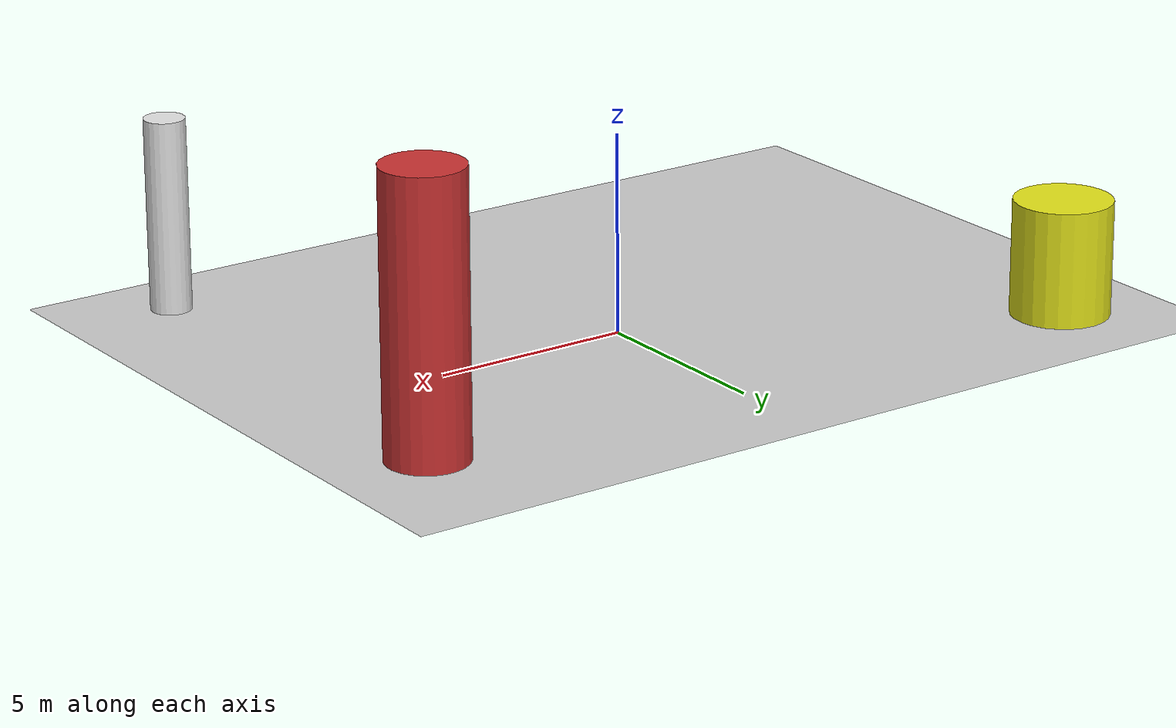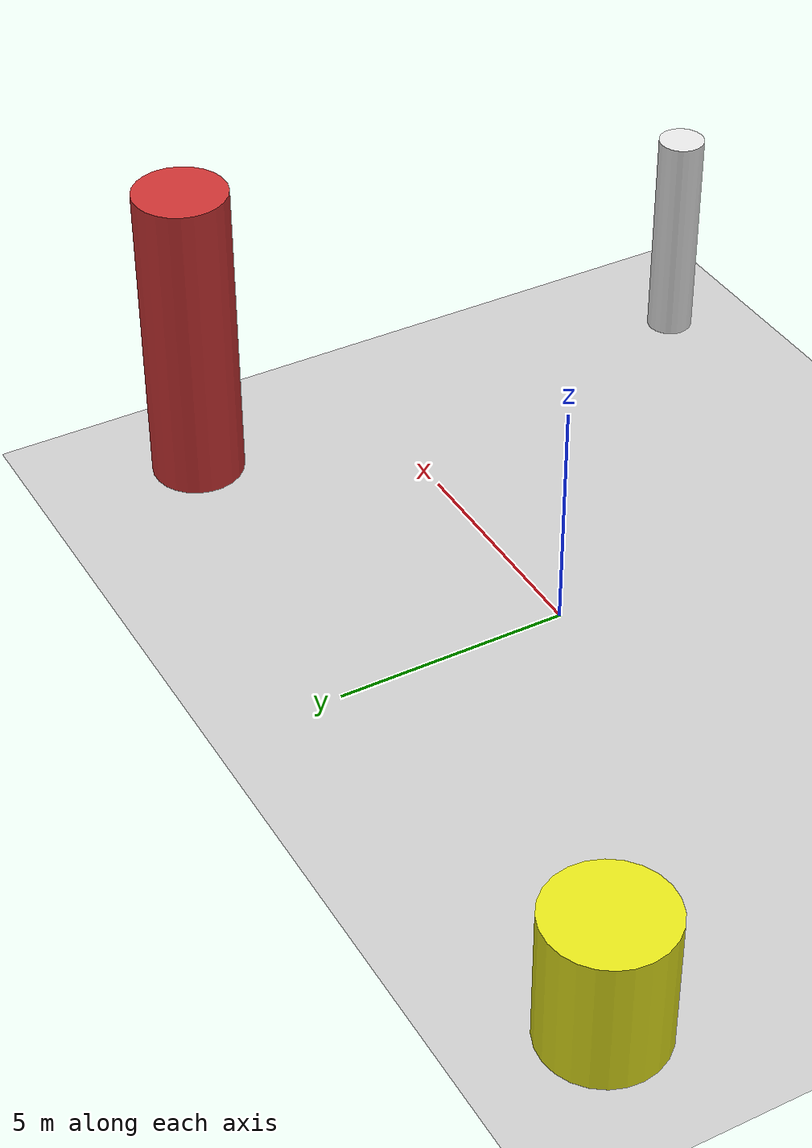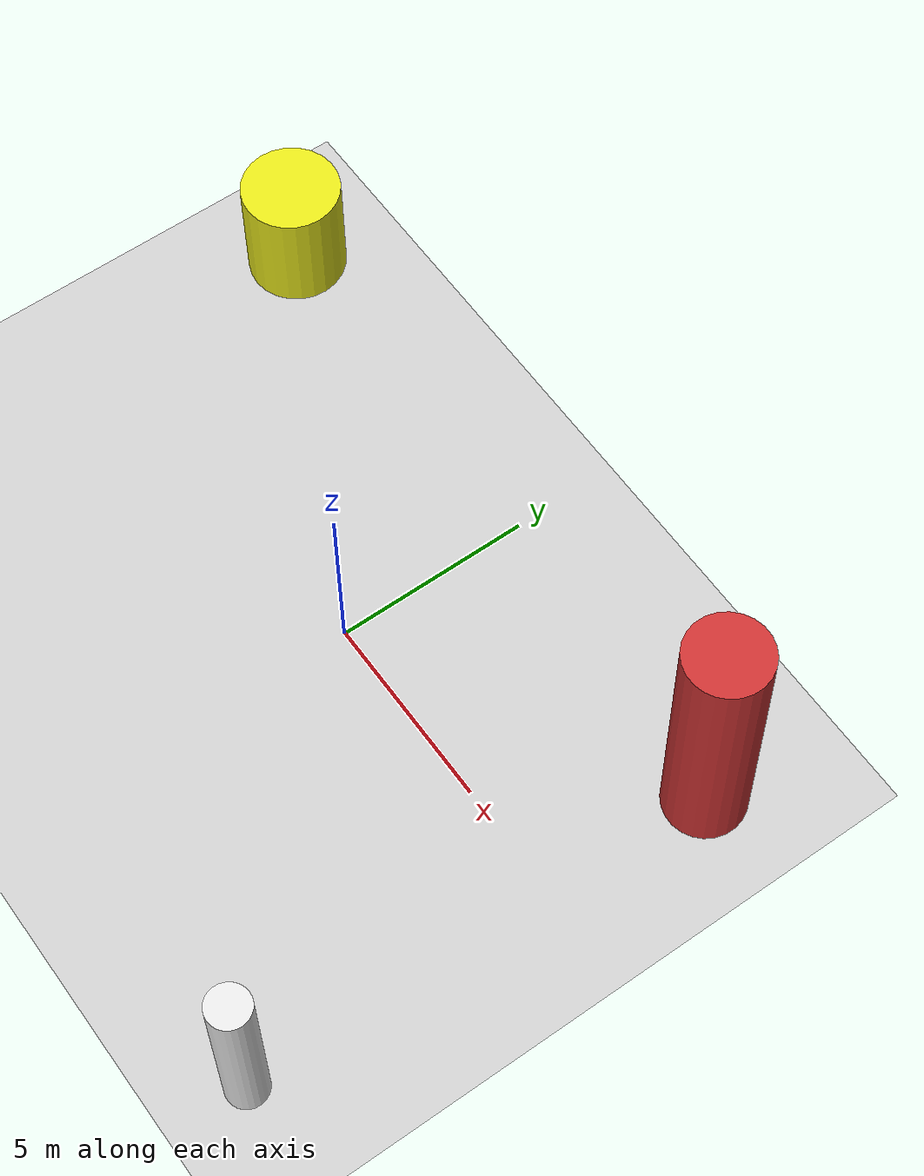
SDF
<?xml version='1.0'?>
<sdf version='1.6'>
  <world name='default'>
    <!-- Sun light -->
    <light name='sun' type='directional'>
      <cast_shadows>1</cast_shadows>
      <pose>0 0 10 0 0 0</pose>
      <diffuse>0.8 0.8 0.8 1</diffuse>
      <specular>0.2 0.2 0.2 1</specular>
      <attenuation>
        <range>1000</range>
        <constant>0.9</constant>
        <linear>0.01</linear>
        <quadratic>0.001</quadratic>
      </attenuation>
      <direction>-0.5 0.1 -0.9</direction>
    </light>

    <!-- Ground plane -->
    <model name='ground_plane'>
      <static>1</static>
      <link name='link'>
        <collision name='collision'>
          <geometry>
            <plane>
              <normal>0 0 1</normal>
              <size>100 100</size>
            </plane>
          </geometry>
          <surface>
            <contact>
              <collide_bitmask>65535</collide_bitmask>
              <ode/>
            </contact>
            <friction>
              <ode>
                <mu>100</mu>
                <mu2>50</mu2>
              </ode>
              <torsional><ode/></torsional>
            </friction>
            <bounce/>
          </surface>
          <max_contacts>10</max_contacts>
        </collision>
        <visual name='visual'>
          <cast_shadows>0</cast_shadows>
          <geometry>
            <plane>
              <normal>0 0 1</normal>
              <size>100 100</size>
            </plane>
          </geometry>
          <material>
            <script>
              <uri>file://media/materials/scripts/gazebo.material</uri>
              <n>Gazebo/Grey</n>
            </script>
          </material>
        </visual>
      </link>
    </model>

    <!-- Environment -->
    <magnetic_field>6e-06 2.3e-05 -4.2e-05</magnetic_field>
    <atmosphere type='adiabatic'/>
    <physics name='default_physics' default='0' type='ode'>
      <gravity>0 0 -9.8</gravity>
      <max_step_size>0.004</max_step_size>
      <real_time_factor>1</real_time_factor>
      <real_time_update_rate>250</real_time_update_rate>
    </physics>
    <scene>
      <ambient>0.4 0.4 0.4 1</ambient>
      <background>0.7 0.7 0.7 1</background>
      <shadows>1</shadows>
    </scene>
    <wind/>
    <spherical_coordinates>
      <surface_model>EARTH_WGS84</surface_model>
      <latitude_deg>0</latitude_deg>
      <longitude_deg>0</longitude_deg>
      <elevation>0</elevation>
      <heading_deg>0</heading_deg>
    </spherical_coordinates>

    <!-- ============ OBSTACLES (3) ============ -->
    <model name='obs_00'>
      <static>1</static>
      <link name='link'>
        <visual name='visual'>
          <geometry>
            <cylinder>
              <radius>1.0046</radius>
              <length>6.8677</length>
            </cylinder>
          </geometry>
          <material>
            <script>
              <n>Gazebo/Red</n>
              <uri>file://media/materials/scripts/gazebo.material</uri>
            </script>
            <ambient>0.8 0.2 0.2 1</ambient>
          </material>
        </visual>
        <collision name='collision'>
          <geometry>
            <cylinder>
              <radius>1.0046</radius>
              <length>6.8677</length>
            </cylinder>
          </geometry>
          <max_contacts>10</max_contacts>
          <surface>
            <contact><ode/></contact>
            <bounce/>
            <friction>
              <ode><mu>1</mu><mu2>1</mu2></ode>
              <torsional><ode/></torsional>
            </friction>
          </surface>
        </collision>
      </link>
      <pose>8.1680 4.2062 3.4339 0 0 0.6359</pose>
    </model>

    <model name='obs_01'>
      <static>1</static>
      <link name='link'>
        <visual name='visual'>
          <geometry>
            <cylinder>
              <radius>0.5120</radius>
              <length>4.8608</length>
            </cylinder>
          </geometry>
          <material>
            <script>
              <n>Gazebo/White</n>
              <uri>file://media/materials/scripts/gazebo.material</uri>
            </script>
            <ambient>0.9 0.9 0.9 1</ambient>
          </material>
        </visual>
        <collision name='collision'>
          <geometry>
            <cylinder>
              <radius>0.5120</radius>
              <length>4.8608</length>
            </cylinder>
          </geometry>
          <max_contacts>10</max_contacts>
          <surface>
            <contact><ode/></contact>
            <bounce/>
            <friction>
              <ode><mu>1</mu><mu2>1</mu2></ode>
              <torsional><ode/></torsional>
            </friction>
          </surface>
        </collision>
      </link>
      <pose>7.8275 -7.8199 2.4304 0 0 1.6097</pose>
    </model>

    <model name='obs_02'>
      <static>1</static>
      <link name='link'>
        <visual name='visual'>
          <geometry>
            <cylinder>
              <radius>1.2326</radius>
              <length>2.9098</length>
            </cylinder>
          </geometry>
          <material>
            <script>
              <n>Gazebo/Yellow</n>
              <uri>file://media/materials/scripts/gazebo.material</uri>
            </script>
            <ambient>0.9 0.9 0.1 1</ambient>
          </material>
        </visual>
        <collision name='collision'>
          <geometry>
            <cylinder>
              <radius>1.2326</radius>
              <length>2.9098</length>
            </cylinder>
          </geometry>
          <max_contacts>10</max_contacts>
          <surface>
            <contact><ode/></contact>
            <bounce/>
            <friction>
              <ode><mu>1</mu><mu2>1</mu2></ode>
              <torsional><ode/></torsional>
            </friction>
          </surface>
        </collision>
      </link>
      <pose>-9.6048 5.0606 1.4549 0 0 2.9129</pose>
    </model>

    <!-- GUI camera -->
    <gui fullscreen='0'>
      <camera name='user_camera'>
        <pose>-15 0 18 0 0.85 0.15</pose>
        <view_controller>orbit</view_controller>
        <projection_type>perspective</projection_type>
      </camera>
    </gui>
  </world>
</sdf>
